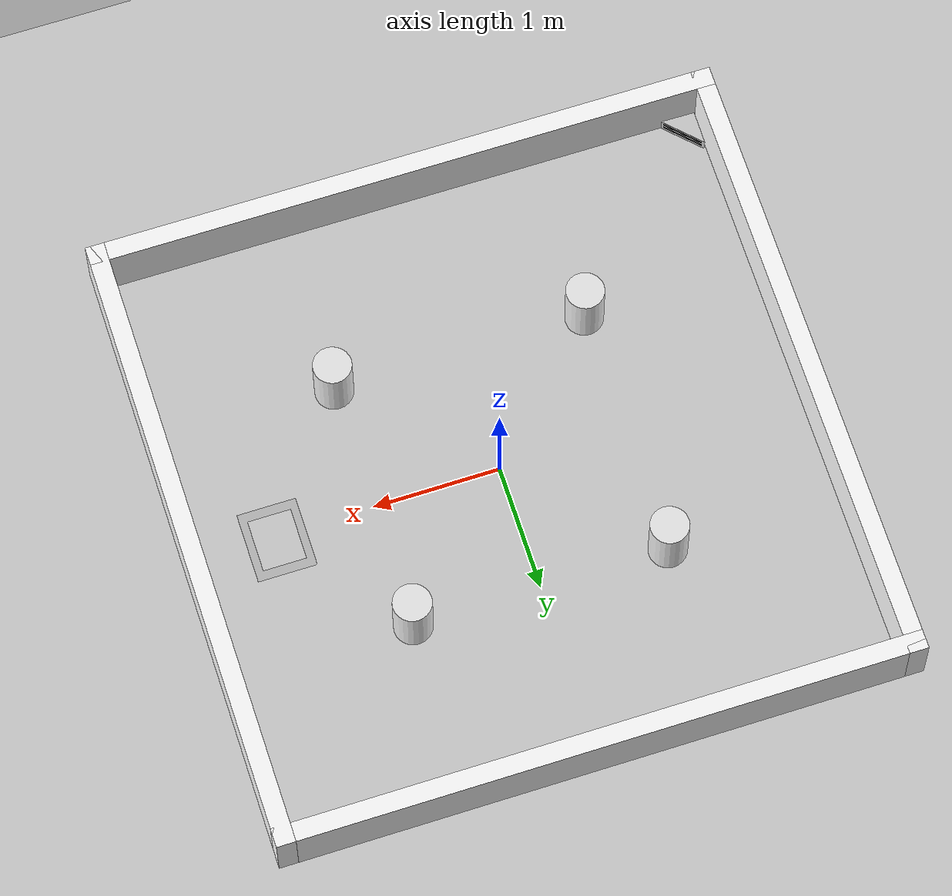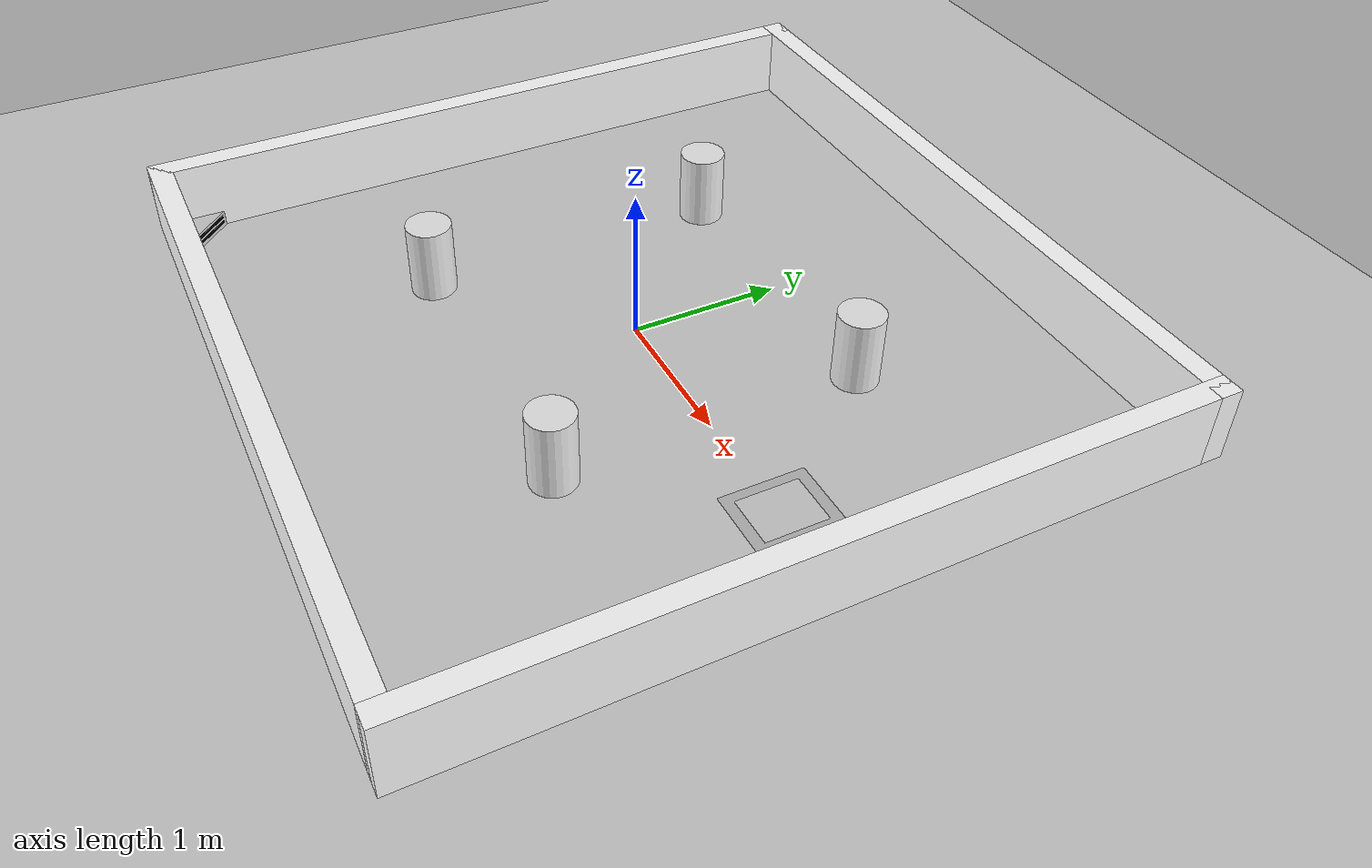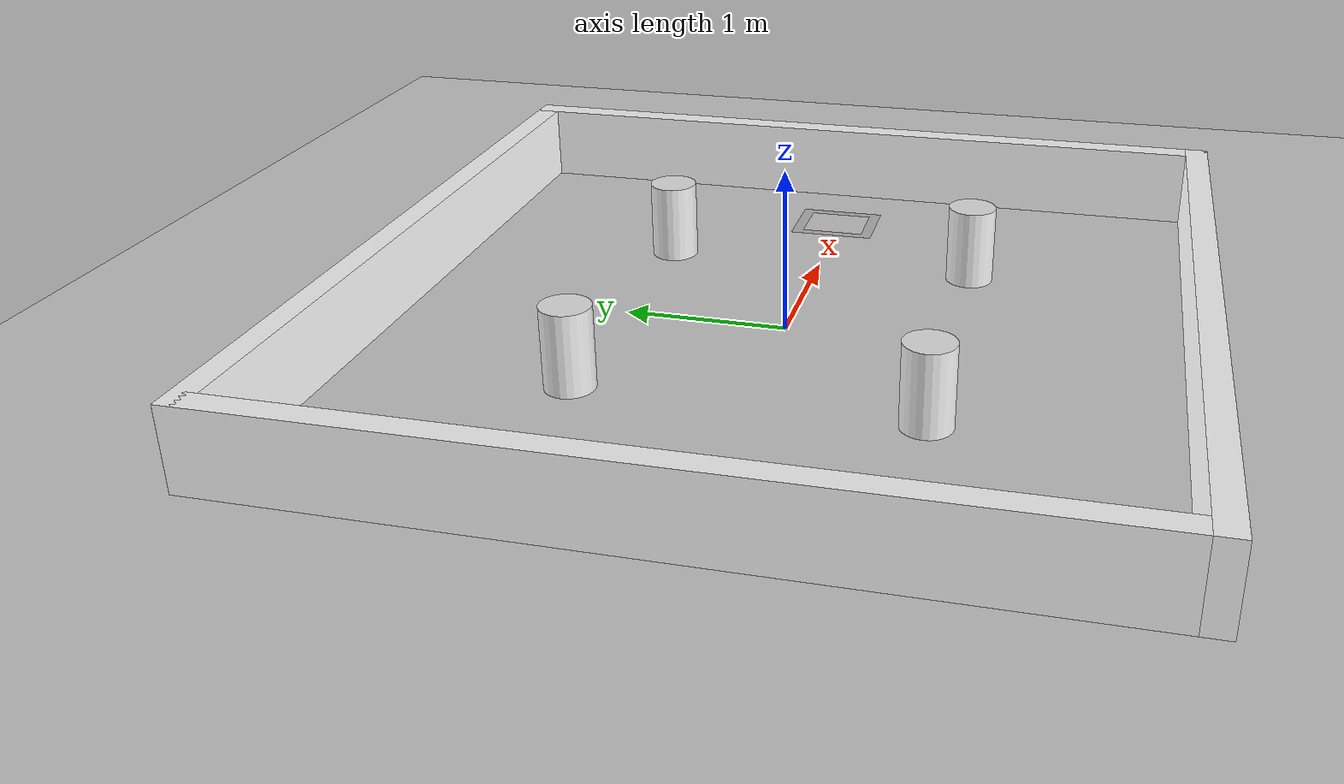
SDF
<?xml version="1.0"?>
<sdf version="1.6">
  <world name="default">

    <include>
      <uri>model://ground_plane</uri>
    </include>

    <include>
      <uri>model://sun</uri>
    </include>

    <scene>
      <shadows>false</shadows>
    </scene>

    <gui fullscreen='0'>
      <camera name='user_camera'>
        <pose frame=''>0.319654 -0.235002 9.29441 0 1.5138 0.009599</pose>
        <view_controller>orbit</view_controller>
        <projection_type>perspective</projection_type>
      </camera>
    </gui>

    <physics type="ode">
      <real_time_update_rate>1000.0</real_time_update_rate>
      <max_step_size>0.001</max_step_size>
      <real_time_factor>1</real_time_factor>
      <ode>
        <solver>
          <type>quick</type>
          <iters>150</iters>
          <precon_iters>0</precon_iters>
          <sor>1.400000</sor>
          <use_dynamic_moi_rescaling>1</use_dynamic_moi_rescaling>
        </solver>
        <constraints>
          <cfm>0.00001</cfm>
          <erp>0.2</erp>
          <contact_max_correcting_vel>2000.000000</contact_max_correcting_vel>
          <contact_surface_layer>0.01000</contact_surface_layer>
        </constraints>
      </ode>
    </physics>

    <model name="turtlebot3_dqn_world">
      <static>1</static>
      <include>
        <uri>model://turtlebot3_dqn_world</uri>
      </include>
    </model>

   <include>
  <uri>model://docking_station</uri>
  <pose>-2.08 -2.09 -0.384 0 0 -2.368</pose> <!-- x y z roll pitch yaw -->
</include>

<include>
  <uri>model://parking_plane</uri>
  <pose>4.45 0.06 0.003 0 0 0</pose> <!-- x y z roll pitch yaw -->
</include>

    <model name="turtlebot3_dqn_obstacles">
      <plugin name="obstacles" filename="libobstacles.so"/>
      <allow_auto_disable>1</allow_auto_disable>
      <include>
        <uri>model://turtlebot3_dqn_world/obstacles</uri>
      </include>
    </model>

  </world>
</sdf>

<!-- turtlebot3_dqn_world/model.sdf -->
<sdf version='1.8'>
  <model name='turtlebot3_square'>
    <pose>0 0 0 0 0 0</pose>
    <static>true</static>

    <link name='Wall_1'>
      <pose>2.425 0 0.25 0 0 1.5708</pose>
      <collision name='Wall_1_Collision'>
        <geometry>
          <box>
            <size>5 0.15 0.5</size>
          </box>
        </geometry>
      </collision>
      <visual name='Wall_1_Visual'>
        <pose>0 0 0 0 0 0</pose>
        <geometry>
          <box>
            <size>5 0.15 0.5</size>
          </box>
        </geometry>
        <material>
          <pbr>
            <metal>
              <albedo_map>textures/wood.png</albedo_map>
            </metal>
          </pbr>
          <ambient>1 1 1 1</ambient>
          <diffuse>1 1 1 1</diffuse>
          <specular>0.2 0.2 0.2 1</specular>
          <emissive>0 0 0 1</emissive>
        </material>
      </visual>
    </link>

    <link name='Wall_2'>
      <pose>0 2.425 0.25 0 0 0</pose>
      <collision name='Wall_2_Collision'>
        <geometry>
          <box>
            <size>5 0.15 0.5</size>
          </box>
        </geometry>
      </collision>
      <visual name='Wall_2_Visual'>
        <pose>0 0 0 0 0 0</pose>
        <geometry>
          <box>
            <size>5 0.15 0.5</size>
          </box>
        </geometry>
        <material>
          <pbr>
            <metal>
              <albedo_map>textures/wood.png</albedo_map>
            </metal>
          </pbr>
          <ambient>1 1 1 1</ambient>
          <diffuse>1 1 1 1</diffuse>
          <specular>0.2 0.2 0.2 1</specular>
          <emissive>0 0 0 1</emissive>
        </material>
      </visual>
    </link>

    <link name='Wall_3'>
      <pose>-2.425 0 0.25 0 0 1.5708</pose>
      <collision name='Wall_3_Collision'>
        <geometry>
          <box>
            <size>5 0.15 0.5</size>
          </box>
        </geometry>
      </collision>
      <visual name='Wall_3_Visual'>
        <pose>0 0 0 0 0 0</pose>
        <geometry>
          <box>
            <size>5 0.15 0.5</size>
          </box>
        </geometry>
        <material>
          <pbr>
            <metal>
              <albedo_map>textures/wood.png</albedo_map>
            </metal>
          </pbr>
          <ambient>1 1 1 1</ambient>
          <diffuse>1 1 1 1</diffuse>
          <specular>0.2 0.2 0.2 1</specular>
          <emissive>0 0 0 1</emissive>
        </material>
      </visual>
    </link>

    <link name='Wall_4'>
      <pose>0 -2.425 0.25 0 0 0</pose>
      <collision name='Wall_4_Collision'>
        <geometry>
          <box>
            <size>5 0.15 0.5</size>
          </box>
        </geometry>
      </collision>
      <visual name='Wall_4_Visual'>
        <pose>0 0 0 0 0 0</pose>
        <geometry>
          <box>
            <size>5 0.15 0.5</size>
          </box>
        </geometry>
        <material>
          <pbr>
            <metal>
              <albedo_map>textures/wood.png</albedo_map>
            </metal>
          </pbr>
          <ambient>1 1 1 1</ambient>
          <diffuse>1 1 1 1</diffuse>
          <specular>0.2 0.2 0.2 1</specular>
          <emissive>0 0 0 1</emissive>
        </material>
      </visual>
    </link>

  </model>
</sdf>

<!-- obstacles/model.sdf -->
<sdf version='1.8'>
  <model name='obstacles'>
    <pose>0 0 0 0 0 0</pose>
    <static>false</static>

    <link name='obstacle_1'>
      <pose>-1.0 -1.0 0.25 0 0 0</pose>
      <collision name='obstacle_1_collision'>
        <geometry>
          <cylinder>
            <radius>0.15</radius>
            <length>0.5</length>
          </cylinder>
        </geometry>
      </collision>
      <visual name='obstacle_1_visual'>
        <geometry>
          <cylinder>
            <radius>0.15</radius>
            <length>0.5</length>
          </cylinder>
        </geometry>
        <material>
          <script>
            <uri>file://media/materials/scripts/gazebo.material</uri>
            <name>Gazebo/White</name>
          </script>
        </material>
      </visual>
    </link>
    <link name='obstacle_2'>
      <pose>-1.0 1.0 0.25 0 0 0</pose>
      <collision name='obstacle_2_collision'>
        <geometry>
          <cylinder>
            <radius>0.15</radius>
            <length>0.5</length>
          </cylinder>
        </geometry>
      </collision>
      <visual name='obstacle_2_visual'>
        <geometry>
          <cylinder>
            <radius>0.15</radius>
            <length>0.5</length>
          </cylinder>
        </geometry>
        <material>
          <script>
            <uri>file://media/materials/scripts/gazebo.material</uri>
            <name>Gazebo/White</name>
          </script>
        </material>
      </visual>
    </link>
    <link name='obstacle_3'>
      <pose>1.0 -1.0 0.25 0 0 0</pose>
      <collision name='obstacle_3_collision'>
        <geometry>
          <cylinder>
            <radius>0.15</radius>
            <length>0.5</length>
          </cylinder>
        </geometry>
      </collision>
      <visual name='obstacle_3_visual'>
        <geometry>
          <cylinder>
            <radius>0.15</radius>
            <length>0.5</length>
          </cylinder>
        </geometry>
        <material>
          <script>
            <uri>file://media/materials/scripts/gazebo.material</uri>
            <name>Gazebo/White</name>
          </script>
        </material>
      </visual>
    </link>
    <link name='obstacle_4'>
      <pose>1.0 1.0 0.25 0 0 0</pose>
      <collision name='obstacle_4_collision'>
        <geometry>
          <cylinder>
            <radius>0.15</radius>
            <length>0.5</length>
          </cylinder>
        </geometry>
      </collision>
      <visual name='obstacle_4_visual'>
        <geometry>
          <cylinder>
            <radius>0.15</radius>
            <length>0.5</length>
          </cylinder>
        </geometry>
        <material>
          <script>
            <uri>file://media/materials/scripts/gazebo.material</uri>
            <name>Gazebo/White</name>
          </script>
        </material>
      </visual>
    </link>
  </model>
</sdf>

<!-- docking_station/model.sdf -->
<sdf version="1.6">
  <model name="docking_station">
    <static>true</static>
    <link name="link">
      <visual name="visual">
        <geometry>
          <mesh>
            <uri>model://docking_station/meshes/docking_station.dae</uri>
          </mesh>
        </geometry>
      </visual>

      <collision name="collision">
        <geometry>
          <mesh>
            <uri>model://docking_station/meshes/docking_station.dae</uri>
          </mesh>
        </geometry>
      </collision>
    </link>
  </model>
</sdf>

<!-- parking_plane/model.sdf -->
<sdf version="1.6">
  <model name="parking_plane">
    <static>true</static>
    <link name="link_plane">
      <visual name="visual_plane">
        <geometry>
          <mesh>
            <uri>model://parking_plane/meshes/parking_model.dae</uri>
          </mesh>
        </geometry>
      </visual>

      <collision name="collision">
        <geometry>
          <mesh>
            <uri>model://parking_plane/meshes/parking_model.dae</uri>
          </mesh>
        </geometry>
      </collision>
    </link>
  </model>
</sdf>
